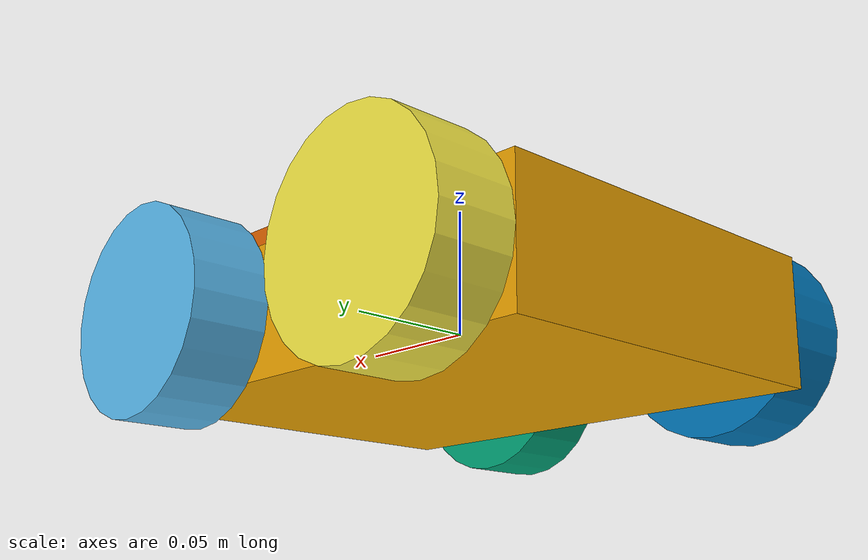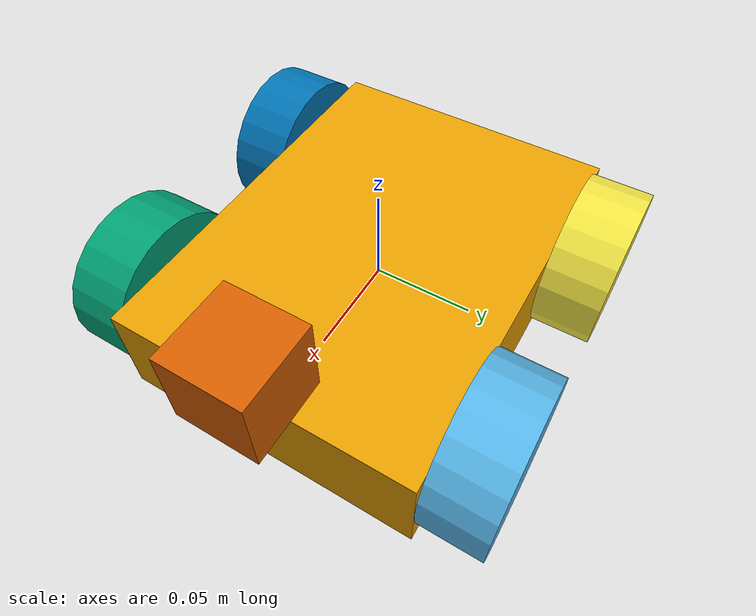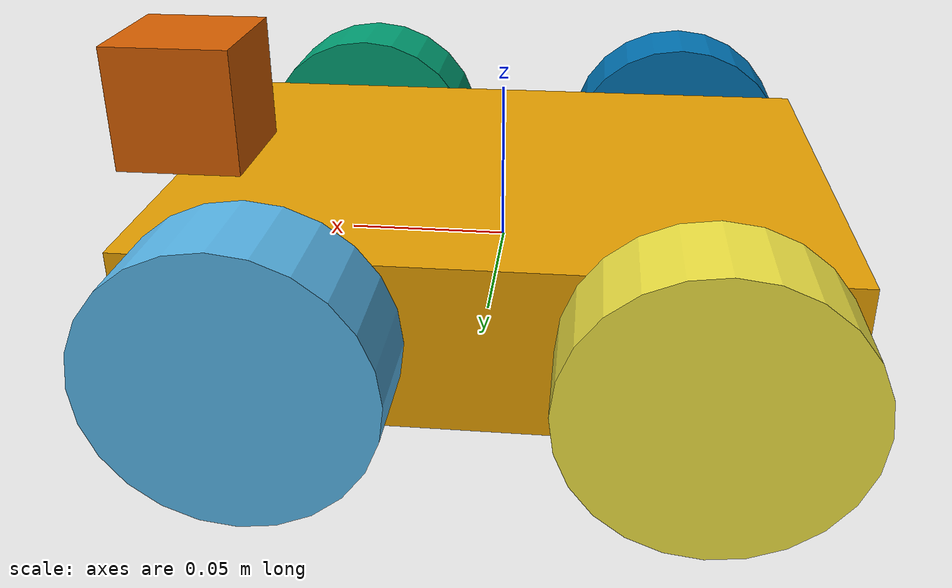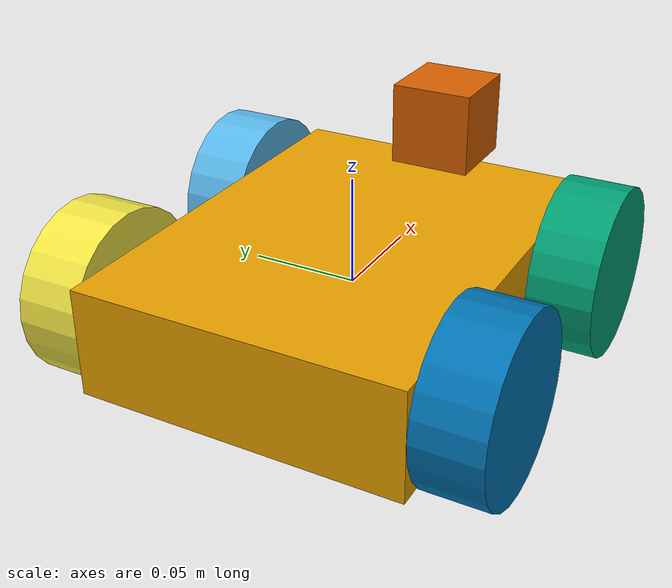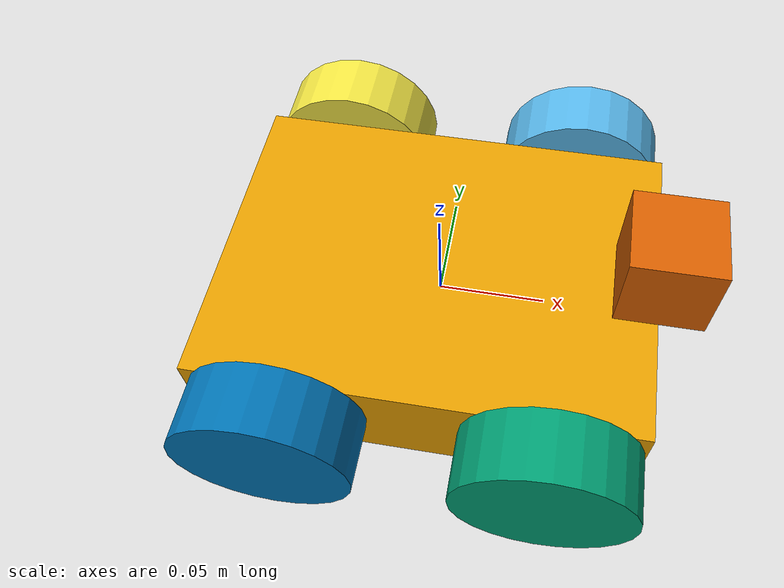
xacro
<?xml version='1.0'?>

<robot name="robot" xmlns:xacro="http://www.ros.org/wiki/xacro">

  <xacro:property name="chassis_width" value="0.15"/>
  <xacro:property name="chassis_length" value="0.2"/>
  <xacro:property name="chassis_height" value="0.05"/>
  <xacro:property name="chassis_mass" value="0.5"/>

  <xacro:property name="wheel_radius" value="0.04"/>
  <xacro:property name="wheel_width" value="0.03"/>
  <xacro:property name="wheel_mass" value="0.1"/>

  <xacro:property name="camera_mass" value="0.01"/>
  <xacro:property name="camera_side_length" value="0.04"/>

  <xacro:include filename="$(find enph353_ros_lab)/urdf/macros.xacro" />

  <!--CHASSIS-->
  <link name='chassis'>

    <xacro:box_inertial name="chassis" m="${chassis_mass}" x="${chassis_length}" y="${chassis_width}" z="${chassis_height}"/>

    <collision name='chassis_collision'>
      <geometry>
        <box size="${chassis_length} ${chassis_width} ${chassis_height}"/>
      </geometry>
    </collision>

    <visual name='chassis_visual'>
      <origin xyz="0 0 0" rpy=" 0 0 0"/>
      <geometry>
        <box size="${chassis_length} ${chassis_width} ${chassis_height}"/>
      </geometry>
    </visual>

  </link>

  <!--WHEELS-->
  <!--Left Front Wheel-->
  <link name='leftFrontWheel'>

    <xacro:cylinder_inertial name="leftFrontWheel" m="${wheel_mass}" r ="${wheel_radius}" h = "${wheel_width}"/>

    <collision name='leftFrontWheel_collision'>
      <origin xyz="0 0 0" rpy="1.5707 1.5707 0"/>
      <geometry>
        <cylinder radius ="${wheel_radius}" length = "${wheel_width}"/>
      </geometry>
    </collision>

    <visual name='leftFrontWheel_visual'>
      <origin xyz="0 0 0" rpy="1.5707 1.5707 0"/>
      <geometry>
        <cylinder radius ="${wheel_radius}" length = "${wheel_width}"/>
      </geometry>
    </visual>

  </link>

  <!--Right Front Wheel-->
  <link name='rightFrontWheel'>

    <xacro:cylinder_inertial name="rightFrontWheel" m="${wheel_mass}" r ="${wheel_radius}" h = "${wheel_width}"/>

    <collision name='rightFrontWheel_collision'>
      <origin xyz="0 0 0" rpy="1.5707 1.5707 0"/>
      <geometry>
        <cylinder radius ="${wheel_radius}" length = "${wheel_width}"/>
      </geometry>
    </collision>

    <visual name='rightFrontWheel_visual'>
      <origin xyz="0 0 0" rpy="1.5707 1.5707 0"/>
      <geometry>
        <cylinder radius ="${wheel_radius}" length = "${wheel_width}"/>
      </geometry>
    </visual>

  </link>

  <!--Left Back Wheel-->
  <link name='leftBackWheel'>

    <xacro:cylinder_inertial name="leftBackWheel" m="${wheel_mass}" r ="${wheel_radius}" h = "${wheel_width}"/>

    <collision name='leftBackWheel_collision'>
      <origin xyz="0 0 0" rpy="1.5707 1.5707 0"/>
      <geometry>
        <cylinder radius ="${wheel_radius}" length = "${wheel_width}"/>
      </geometry>
    </collision>

    <visual name='leftBackWheel_visual'>
      <origin xyz="0 0 0" rpy="1.5707 1.5707 0"/>
      <geometry>
        <cylinder radius ="${wheel_radius}" length = "${wheel_width}"/>
      </geometry>
    </visual>

  </link>

  <!--Right Back Wheel-->
  <link name='rightBackWheel'>

    <xacro:cylinder_inertial name="rightBackWheel" m="${wheel_mass}" r ="${wheel_radius}" h = "${wheel_width}"/>

    <collision name='rightBackWheel_collision'>
      <origin xyz="0 0 0" rpy="1.5707 1.5707 0"/>
      <geometry>
        <cylinder radius ="${wheel_radius}" length = "${wheel_width}"/>
      </geometry>
    </collision>

    <visual name='rightBackWheel_visual'>
      <origin xyz="0 0 0" rpy="1.5707 1.5707 0"/>
      <geometry>
        <cylinder radius ="${wheel_radius}" length = "${wheel_width}"/>
      </geometry>
    </visual>

  </link>

  <!--CAMERA OBJECT-->
  <link name='cameraBox'>

    <xacro:box_inertial name="cameraBox" m="${camera_mass}" x="${camera_side_length}" y="${camera_side_length}" z="${camera_side_length}"/>

    <collision name='cameraBox_collision'>
      <geometry>
        <origin xyz="0 0 0" rpy=" 0 0 0"/>
        <box size="${camera_side_length} ${camera_side_length} ${camera_side_length}"/>
      </geometry>
    </collision>

    <visual name='cameraBox_visual'>
      <origin xyz="0 0 0" rpy=" 0 0 0"/>
      <geometry>
        <box size="${camera_side_length} ${camera_side_length} ${camera_side_length}"/>
      </geometry>
    </visual>

  </link>

  <!--WHEEL JOINTS-->
  <!--Chassis and Left Front Wheel Joint-->
  <joint name="chassis_leftFrontWheel" type="continuous">
    <origin xyz="0.06 0.09 0.002" rpy="0 0 0"/>
    <axis xyz="0 1 0"/>

    <parent link="chassis"/>
    <child link="leftFrontWheel"/>

  </joint>

  <!--Chassis and Right Front Wheel Joint-->
  <joint name="chassis_rightFrontWheel" type="continuous">
    <origin xyz="0.06 -0.09 0.002" rpy="0 0 0"/>
    <axis xyz="0 1 0"/>

    <parent link="chassis"/>
    <child link="rightFrontWheel"/>

  </joint>

  <!--Chassis and Left Back Wheel Joint-->
  <joint name="chassis_leftBackWheel" type="continuous">
    <origin xyz="-0.06 0.09 0.002" rpy="0 0 0"/>
    <axis xyz="0 1 0"/>

    <parent link="chassis"/>
    <child link="leftBackWheel"/>

  </joint>

  <!--Chassis and Left Back Wheel Joint-->
  <joint name="chassis_rightBackWheel" type="continuous">
    <origin xyz="-0.06 -0.09 0.002" rpy="0 0 0"/>
    <axis xyz="0 1 0"/>

    <parent link="chassis"/>
    <child link="rightBackWheel"/>

  </joint>

  <!--CAMERA JOINT-->
  <joint name="chassis_camera" type="fixed">
    <origin xyz="0.1 0 0.045" rpy="0 0 0"/>

    <parent link="chassis"/>
    <child link="cameraBox"/>

  </joint>

  <!--PLUGINS-->

  <!--Robot driver plugin-->
  <gazebo>
    <plugin name="skid_steer_drive_controller" filename="libgazebo_ros_skid_steer_drive.so">
      <updateRate>30.0</updateRate>
      <robotNamespace>/</robotNamespace>

      <leftFrontJoint>chassis_leftFrontWheel</leftFrontJoint>
      <rightFrontJoint>chassis_rightFrontWheel</rightFrontJoint>
      <leftRearJoint>chassis_leftBackWheel</leftRearJoint>
      <rightRearJoint>chassis_rightBackWheel</rightRearJoint>

      <wheelSeparation>0.18</wheelSeparation>
      <wheelDiameter>0.08</wheelDiameter>

      <robotBaseFrame>chassis</robotBaseFrame>
      <torque>20</torque>
      <topicName>cmd_vel</topicName>
      <broadcastTF>false</broadcastTF>
    </plugin>

    <plugin name="joint_state_publisher" filename="libgazebo_ros_joint_state_publisher.so">
      <jointName>chassis_leftFrontWheel,chassis_rightFrontWheel,chassis_leftBackWheel,chassis_rightBackWheel</jointName>
      <updateRate>30.0</updateRate>
      <alwaysOn>true</alwaysOn>
    </plugin>
  </gazebo>

  <!--Camera Plugin-->
  <gazebo reference="cameraBox">
    <sensor type="camera" name="camera1">
      <update_rate>30.0</update_rate>
      <camera name="head">
        <horizontal_fov>1.3962634</horizontal_fov>
        <image>
          <width>800</width>
          <height>800</height>
          <format>R8G8B8</format>
        </image>
        <clip>
          <near>0.02</near>
          <far>300</far>
        </clip>
        <noise>
          <type>gaussian</type>
          <!-- Noise is sampled independently per pixel on each frame.
               That pixel's noise value is added to each of its color
               channels, which at that point lie in the range [0,1]. -->
          <mean>0.0</mean>
          <stddev>0.007</stddev>
        </noise>
      </camera>
      <plugin name="camera_controller" filename="libgazebo_ros_camera.so">
        <alwaysOn>true</alwaysOn>
        <updateRate>0.0</updateRate>
        <cameraName>camera1</cameraName>
        <imageTopicName>image_raw</imageTopicName>
        <cameraInfoTopicName>camera_info</cameraInfoTopicName>
        <frameName>cameraBox</frameName>
        <hackBaseline>0.07</hackBaseline>
        <distortionK1>0.0</distortionK1>
        <distortionK2>0.0</distortionK2>
        <distortionK3>0.0</distortionK3>
        <distortionT1>0.0</distortionT1>
        <distortionT2>0.0</distortionT2>
      </plugin>
    </sensor>
  </gazebo>
</robot>

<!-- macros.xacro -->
<robot xmlns:xacro="http://www.ros.org/wiki/xacro">
  <xacro:macro name="cylinder_inertial" params="name m r h">
    <inertial name="${name}_intertial">
      <mass value="${m}"/>
      <inertia  ixx="${m*(3*r*r+h*h)/12}" ixy = "0" ixz = "0"
        iyy="${m*(3*r*r+h*h)/12}" iyz = "0"
        izz="${m*r*r/2}"/>
    </inertial>
  </xacro:macro>

  <xacro:macro name="box_inertial" params="name m x y z">
    <inertial name="${name}_inertial">
      <mass value="${m}"/>
      <inertia  ixx="${m*(y*y+z*z)/12}" ixy = "0" ixz = "0"
        iyy="${m*(x*x+y*y)/12}" iyz = "0"
        izz="${m*(x*x+z*z)/12}"/>
    </inertial>
  </xacro:macro>

  <xacro:macro name="sphere_inertial" params="name m r">
    <inertial name="${name}_inertial">
      <mass value="${m}"/>
      <inertia  ixx="${2*m*r*r/5}" ixy = "0" ixz = "0"
        iyy="${2*m*r*r/5}" iyz = "0"
        izz="${2*m*r*r/5}"/>
    </inertial>
  </xacro:macro>
</robot>
